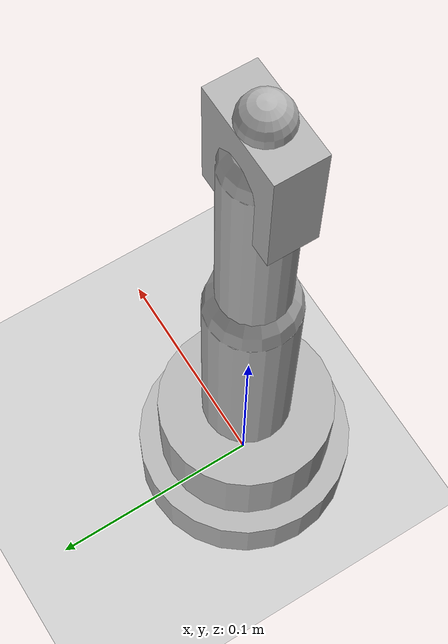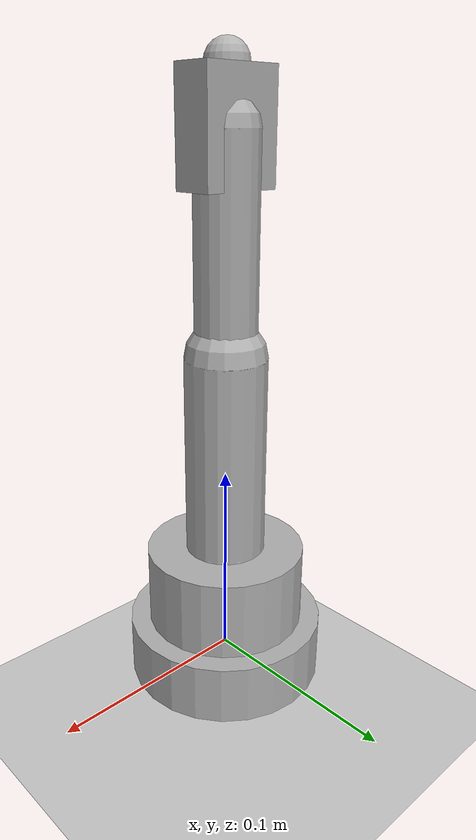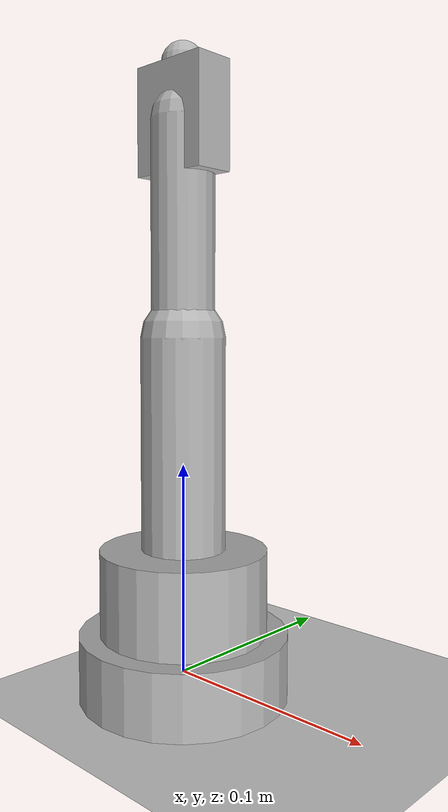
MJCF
<mujoco model="roarm_m2s_simple">
  <compiler angle="radian"/>

  <option gravity="0 0 -9.81" timestep="0.002"/>

  <default>
    <joint damping="0.1" armature="0.01"/>
    <geom contype="1" conaffinity="0" friction="1 0.1 0.1" rgba="0.7 0.7 0.7 1"/>
  </default>

  <asset>
    <material name="black" rgba="0.2 0.2 0.2 1"/>
    <material name="orange" rgba="1.0 0.5 0.0 1"/>
    <material name="gray" rgba="0.5 0.5 0.5 1"/>
  </asset>

  <worldbody>
    <!-- Base -->
    <body name="base" pos="0 0 0">
      <geom name="base_geom" type="cylinder" size="0.05 0.02" material="black"/>
      <inertial pos="0 0 0.01" mass="0.2" diaginertia="0.0002 0.0002 0.0002"/>

      <!-- Joint 1: Base rotation (360°) -->
      <body name="shoulder_link" pos="0 0 0.02">
        <inertial pos="0 0 0.03" mass="0.15" diaginertia="0.0001 0.0001 0.0001"/>
        <joint name="base_joint" type="hinge" axis="0 0 1" range="-3.14159 3.14159"/>
        <geom name="shoulder_base_geom" type="cylinder" size="0.04 0.04" material="gray"/>

        <!-- Joint 2: Shoulder (180°) -->
        <body name="upper_arm" pos="0 0 0.04">
          <inertial pos="0 0 0.05" mass="0.1" diaginertia="0.0001 0.0001 0.0001"/>
          <joint name="shoulder_joint" type="hinge" axis="0 1 0" range="-1.5708 1.5708"/>
          <geom name="upper_arm_geom" type="capsule" fromto="0 0 0 0 0 0.1" size="0.02" material="orange"/>

          <!-- Joint 3: Elbow (225°) -->
          <body name="forearm" pos="0 0 0.1">
            <inertial pos="0 0 0.05" mass="0.08" diaginertia="0.00008 0.00008 0.00008"/>
            <joint name="elbow_joint" type="hinge" axis="0 1 0" range="-1.11 3.14159" ref="1.5708"/>
            <geom name="forearm_geom" type="capsule" fromto="0 0 0 0 0 0.1" size="0.015" material="orange"/>

            <!-- Joint 4: Simple Gripper -->
            <body name="gripper" pos="0 0 0.1">
              <inertial pos="0 0 0.02" mass="0.05" diaginertia="0.00005 0.00005 0.00005"/>
              <joint name="gripper_joint" type="hinge" axis="0 0 1" range="1.08 3.14159" ref="3.14159"/>
              <geom name="gripper_geom" type="box" size="0.02 0.01 0.025" material="black"/>
              <geom name="gripper_tip" type="sphere" size="0.01" pos="0 0 0.025" material="gray"/>
            </body>
          </body>
        </body>
      </body>
    </body>

    <!-- Ground plane -->
    <body name="ground" pos="0 0 -0.01">
      <geom name="ground_geom" type="plane" size="0.5 0.5 0.01" rgba="0.8 0.8 0.8 1"/>
    </body>
  </worldbody>

  <actuator>
    <motor name="base_motor" joint="base_joint" gear="30" ctrllimited="true" ctrlrange="-2 2"/>
    <motor name="shoulder_motor" joint="shoulder_joint" gear="30" ctrllimited="true" ctrlrange="-2 2"/>
    <motor name="elbow_motor" joint="elbow_joint" gear="30" ctrllimited="true" ctrlrange="-2 2"/>
    <motor name="gripper_motor" joint="gripper_joint" gear="20" ctrllimited="true" ctrlrange="-1 1"/>
  </actuator>
</mujoco>
